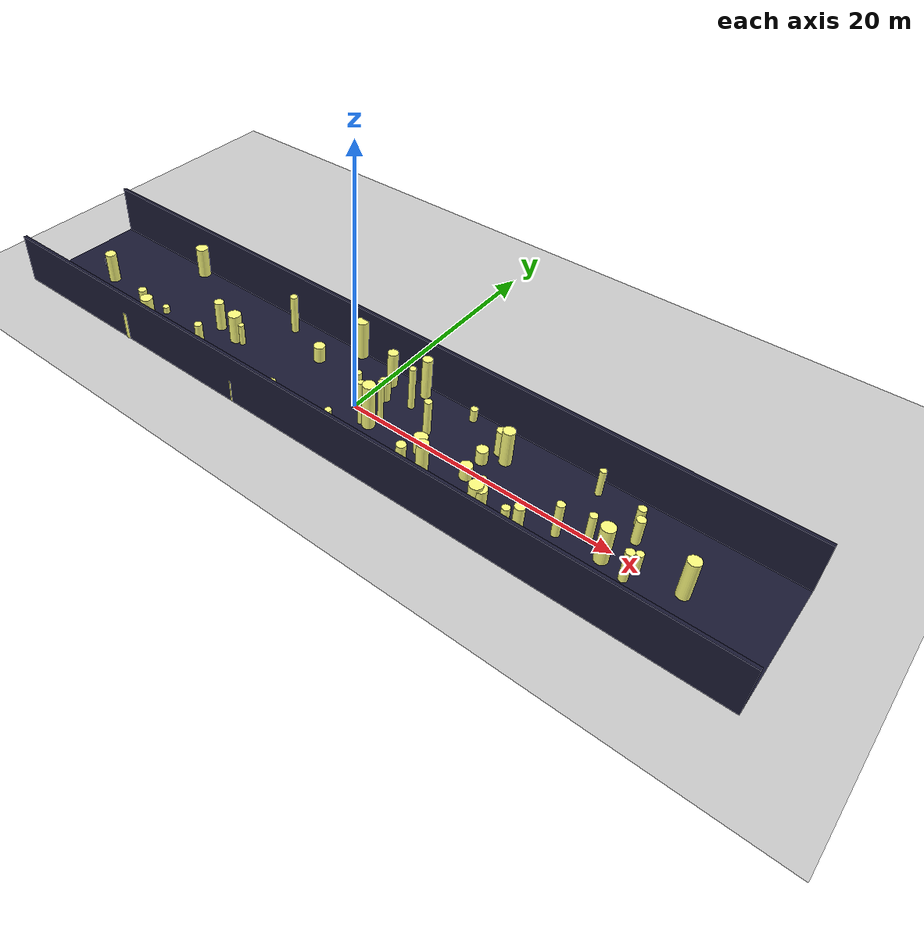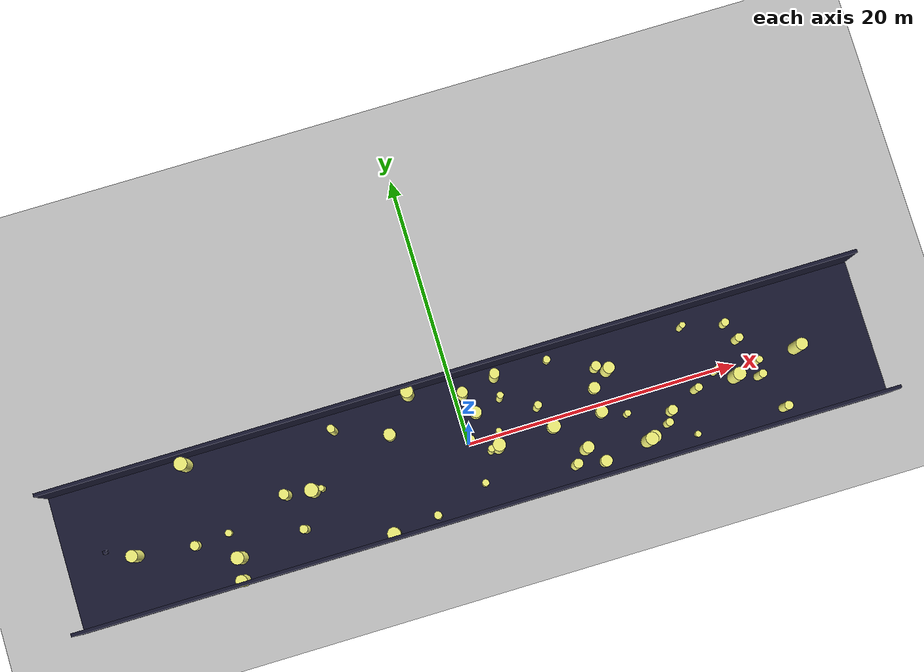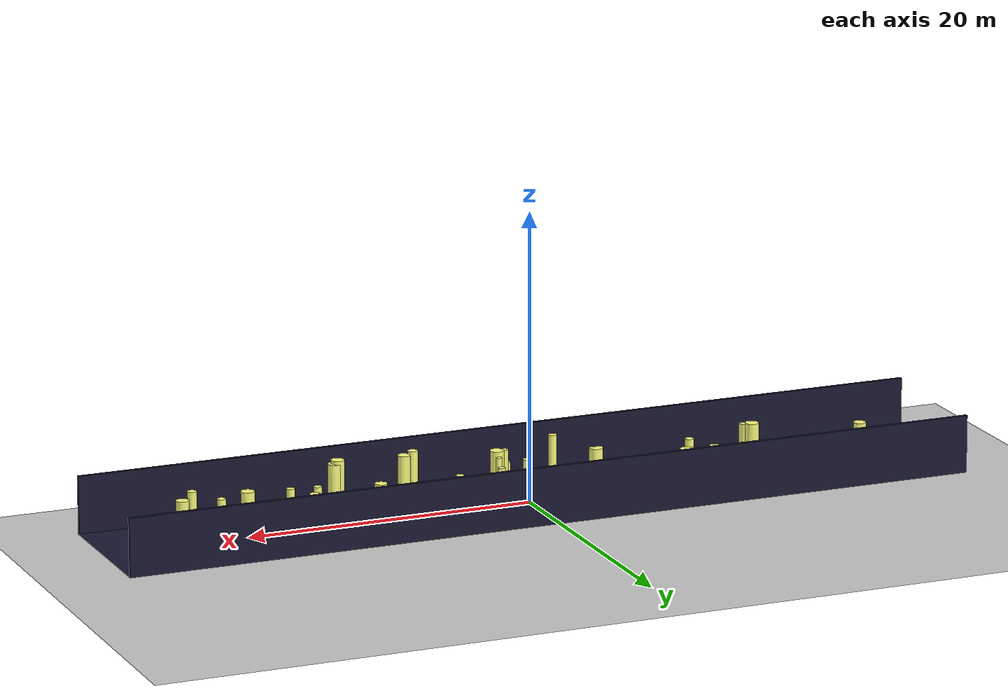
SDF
<?xml version="1.0"?>
<sdf version="1.4">
  <world name="default">
    <gui>
      <camera name="user_camera">
        <pose>-20 -30 40 0 0.66 0.83</pose>
      </camera>
    </gui>
    <include>
      <uri>model://ground_plane</uri>
    </include>
    <include>
      <uri>model://sun</uri>
    </include>
    <scene>
      <shadows>0</shadows>
    </scene>
    <model name="forest">
      <static>true</static>
      <link name="cylinder0">
        <pose>-9.007866908107854 3.6336175938605813 1.5889710431421862 0 0 0 </pose>
        <visual name="visual">
          <geometry>
            <cylinder>
              <radius>0.28667502407270284</radius>
              <length>3.1779420862843724</length>
            </cylinder>
          </geometry>
          <material>
            <ambient>0.6 0.6 0.6 1</ambient>
            <diffuse>1 1 0.5 1</diffuse>
            <specular>0 0 0</specular>
            <emissive>0 0 0 1</emissive>
          </material>
        </visual>
        <collision name="collision">
          <geometry>
            <cylinder>
              <radius>0.28667502407270284</radius>
              <length>3.1779420862843724</length>
            </cylinder>
          </geometry>
          <max_contacts>0</max_contacts>
        </collision>
      </link>
      <link name="cylinder1">
        <pose>-20.66569968192196 -1.3975017943477566 0.6072020154267208 0 0 0 </pose>
        <visual name="visual">
          <geometry>
            <cylinder>
              <radius>0.3318479653433595</radius>
              <length>1.2144040308534416</length>
            </cylinder>
          </geometry>
          <material>
            <ambient>0.6 0.6 0.6 1</ambient>
            <diffuse>1 1 0.5 1</diffuse>
            <specular>0 0 0</specular>
            <emissive>0 0 0 1</emissive>
          </material>
        </visual>
        <collision name="collision">
          <geometry>
            <cylinder>
              <radius>0.3318479653433595</radius>
              <length>1.2144040308534416</length>
            </cylinder>
          </geometry>
          <max_contacts>0</max_contacts>
        </collision>
      </link>
      <link name="cylinder2">
        <pose>21.60826984879961 -0.21720207500999233 0.743101159314246 0 0 0 </pose>
        <visual name="visual">
          <geometry>
            <cylinder>
              <radius>0.2509373916475997</radius>
              <length>1.486202318628492</length>
            </cylinder>
          </geometry>
          <material>
            <ambient>0.6 0.6 0.6 1</ambient>
            <diffuse>1 1 0.5 1</diffuse>
            <specular>0 0 0</specular>
            <emissive>0 0 0 1</emissive>
          </material>
        </visual>
        <collision name="collision">
          <geometry>
            <cylinder>
              <radius>0.2509373916475997</radius>
              <length>1.486202318628492</length>
            </cylinder>
          </geometry>
          <max_contacts>0</max_contacts>
        </collision>
      </link>
      <link name="cylinder3">
        <pose>10.23094538110945 2.631948022635946 1.05407087368085 0 0 0 </pose>
        <visual name="visual">
          <geometry>
            <cylinder>
              <radius>0.34786648786044283</radius>
              <length>2.1081417473617</length>
            </cylinder>
          </geometry>
          <material>
            <ambient>0.6 0.6 0.6 1</ambient>
            <diffuse>1 1 0.5 1</diffuse>
            <specular>0 0 0</specular>
            <emissive>0 0 0 1</emissive>
          </material>
        </visual>
        <collision name="collision">
          <geometry>
            <cylinder>
              <radius>0.34786648786044283</radius>
              <length>2.1081417473617</length>
            </cylinder>
          </geometry>
          <max_contacts>0</max_contacts>
        </collision>
      </link>
      <link name="cylinder4">
        <pose>-11.583739127271969 -0.05037728513036388 1.2016029947754325 0 0 0 </pose>
        <visual name="visual">
          <geometry>
            <cylinder>
              <radius>0.496545229920837</radius>
              <length>2.403205989550865</length>
            </cylinder>
          </geometry>
          <material>
            <ambient>0.6 0.6 0.6 1</ambient>
            <diffuse>1 1 0.5 1</diffuse>
            <specular>0 0 0</specular>
            <emissive>0 0 0 1</emissive>
          </material>
        </visual>
        <collision name="collision">
          <geometry>
            <cylinder>
              <radius>0.496545229920837</radius>
              <length>2.403205989550865</length>
            </cylinder>
          </geometry>
          <max_contacts>0</max_contacts>
        </collision>
      </link>
      <link name="cylinder5">
        <pose>-18.03128849901069 -4.751201563860398 1.1048529616489402 0 0 0 </pose>
        <visual name="visual">
          <geometry>
            <cylinder>
              <radius>0.4230949329484761</radius>
              <length>2.2097059232978804</length>
            </cylinder>
          </geometry>
          <material>
            <ambient>0.6 0.6 0.6 1</ambient>
            <diffuse>1 1 0.5 1</diffuse>
            <specular>0 0 0</specular>
            <emissive>0 0 0 1</emissive>
          </material>
        </visual>
        <collision name="collision">
          <geometry>
            <cylinder>
              <radius>0.4230949329484761</radius>
              <length>2.2097059232978804</length>
            </cylinder>
          </geometry>
          <max_contacts>0</max_contacts>
        </collision>
      </link>
      <link name="cylinder6">
        <pose>10.976531216105947 2.1993259453046266 1.4198526204947848 0 0 0 </pose>
        <visual name="visual">
          <geometry>
            <cylinder>
              <radius>0.42525398023998084</radius>
              <length>2.8397052409895696</length>
            </cylinder>
          </geometry>
          <material>
            <ambient>0.6 0.6 0.6 1</ambient>
            <diffuse>1 1 0.5 1</diffuse>
            <specular>0 0 0</specular>
            <emissive>0 0 0 1</emissive>
          </material>
        </visual>
        <collision name="collision">
          <geometry>
            <cylinder>
              <radius>0.42525398023998084</radius>
              <length>2.8397052409895696</length>
            </cylinder>
          </geometry>
          <max_contacts>0</max_contacts>
        </collision>
      </link>
      <link name="cylinder7">
        <pose>22.43195071832072 -3.9768542778651748 1.1827580891793548 0 0 0 </pose>
        <visual name="visual">
          <geometry>
            <cylinder>
              <radius>0.3150210592932545</radius>
              <length>2.3655161783587095</length>
            </cylinder>
          </geometry>
          <material>
            <ambient>0.6 0.6 0.6 1</ambient>
            <diffuse>1 1 0.5 1</diffuse>
            <specular>0 0 0</specular>
            <emissive>0 0 0 1</emissive>
          </material>
        </visual>
        <collision name="collision">
          <geometry>
            <cylinder>
              <radius>0.3150210592932545</radius>
              <length>2.3655161783587095</length>
            </cylinder>
          </geometry>
          <max_contacts>0</max_contacts>
        </collision>
      </link>
      <link name="cylinder8">
        <pose>20.07810128007857 3.0350034423251415 0.7243621867205627 0 0 0 </pose>
        <visual name="visual">
          <geometry>
            <cylinder>
              <radius>0.28852078708174766</radius>
              <length>1.4487243734411255</length>
            </cylinder>
          </geometry>
          <material>
            <ambient>0.6 0.6 0.6 1</ambient>
            <diffuse>1 1 0.5 1</diffuse>
            <specular>0 0 0</specular>
            <emissive>0 0 0 1</emissive>
          </material>
        </visual>
        <collision name="collision">
          <geometry>
            <cylinder>
              <radius>0.28852078708174766</radius>
              <length>1.4487243734411255</length>
            </cylinder>
          </geometry>
          <max_contacts>0</max_contacts>
        </collision>
      </link>
      <link name="cylinder9">
        <pose>7.084890975363429 4.1733206335773545 0.5275627496887653 0 0 0 </pose>
        <visual name="visual">
          <geometry>
            <cylinder>
              <radius>0.26593459914726936</radius>
              <length>1.0551254993775305</length>
            </cylinder>
          </geometry>
          <material>
            <ambient>0.6 0.6 0.6 1</ambient>
            <diffuse>1 1 0.5 1</diffuse>
            <specular>0 0 0</specular>
            <emissive>0 0 0 1</emissive>
          </material>
        </visual>
        <collision name="collision">
          <geometry>
            <cylinder>
              <radius>0.26593459914726936</radius>
              <length>1.0551254993775305</length>
            </cylinder>
          </geometry>
          <max_contacts>0</max_contacts>
        </collision>
      </link>
      <link name="cylinder10">
        <pose>14.067921233545064 -2.6960658570881 1.0225722839494082 0 0 0 </pose>
        <visual name="visual">
          <geometry>
            <cylinder>
              <radius>0.27816849083908235</radius>
              <length>2.0451445678988165</length>
            </cylinder>
          </geometry>
          <material>
            <ambient>0.6 0.6 0.6 1</ambient>
            <diffuse>1 1 0.5 1</diffuse>
            <specular>0 0 0</specular>
            <emissive>0 0 0 1</emissive>
          </material>
        </visual>
        <collision name="collision">
          <geometry>
            <cylinder>
              <radius>0.27816849083908235</radius>
              <length>2.0451445678988165</length>
            </cylinder>
          </geometry>
          <max_contacts>0</max_contacts>
        </collision>
      </link>
      <link name="cylinder11">
        <pose>1.1215339120990926 1.9502659571878533 0.8541980133889238 0 0 0 </pose>
        <visual name="visual">
          <geometry>
            <cylinder>
              <radius>0.4098261735864035</radius>
              <length>1.7083960267778475</length>
            </cylinder>
          </geometry>
          <material>
            <ambient>0.6 0.6 0.6 1</ambient>
            <diffuse>1 1 0.5 1</diffuse>
            <specular>0 0 0</specular>
            <emissive>0 0 0 1</emissive>
          </material>
        </visual>
        <collision name="collision">
          <geometry>
            <cylinder>
              <radius>0.4098261735864035</radius>
              <length>1.7083960267778475</length>
            </cylinder>
          </geometry>
          <max_contacts>0</max_contacts>
        </collision>
      </link>
      <link name="cylinder12">
        <pose>11.455414160498293 -1.2038409326856545 0.7909466233645084 0 0 0 </pose>
        <visual name="visual">
          <geometry>
            <cylinder>
              <radius>0.22921347853809856</radius>
              <length>1.5818932467290168</length>
            </cylinder>
          </geometry>
          <material>
            <ambient>0.6 0.6 0.6 1</ambient>
            <diffuse>1 1 0.5 1</diffuse>
            <specular>0 0 0</specular>
            <emissive>0 0 0 1</emissive>
          </material>
        </visual>
        <collision name="collision">
          <geometry>
            <cylinder>
              <radius>0.22921347853809856</radius>
              <length>1.5818932467290168</length>
            </cylinder>
          </geometry>
          <max_contacts>0</max_contacts>
        </collision>
      </link>
      <link name="cylinder13">
        <pose>0.5568818070063166 3.4864768307656817 1.4662130956916957 0 0 0 </pose>
        <visual name="visual">
          <geometry>
            <cylinder>
              <radius>0.38497242811029386</radius>
              <length>2.9324261913833913</length>
            </cylinder>
          </geometry>
          <material>
            <ambient>0.6 0.6 0.6 1</ambient>
            <diffuse>1 1 0.5 1</diffuse>
            <specular>0 0 0</specular>
            <emissive>0 0 0 1</emissive>
          </material>
        </visual>
        <collision name="collision">
          <geometry>
            <cylinder>
              <radius>0.38497242811029386</radius>
              <length>2.9324261913833913</length>
            </cylinder>
          </geometry>
          <max_contacts>0</max_contacts>
        </collision>
      </link>
      <link name="cylinder14">
        <pose>2.230680418383379 0.09998492530160252 1.7162210548823205 0 0 0 </pose>
        <visual name="visual">
          <geometry>
            <cylinder>
              <radius>0.20535226864262868</radius>
              <length>3.432442109764641</length>
            </cylinder>
          </geometry>
          <material>
            <ambient>0.6 0.6 0.6 1</ambient>
            <diffuse>1 1 0.5 1</diffuse>
            <specular>0 0 0</specular>
            <emissive>0 0 0 1</emissive>
          </material>
        </visual>
        <collision name="collision">
          <geometry>
            <cylinder>
              <radius>0.20535226864262868</radius>
              <length>3.432442109764641</length>
            </cylinder>
          </geometry>
          <max_contacts>0</max_contacts>
        </collision>
      </link>
      <link name="cylinder15">
        <pose>-12.847125937846066 -2.519485884373257 1.14805936063665 0 0 0 </pose>
        <visual name="visual">
          <geometry>
            <cylinder>
              <radius>0.3015717111274162</radius>
              <length>2.2961187212733</length>
            </cylinder>
          </geometry>
          <material>
            <ambient>0.6 0.6 0.6 1</ambient>
            <diffuse>1 1 0.5 1</diffuse>
            <specular>0 0 0</specular>
            <emissive>0 0 0 1</emissive>
          </material>
        </visual>
        <collision name="collision">
          <geometry>
            <cylinder>
              <radius>0.3015717111274162</radius>
              <length>2.2961187212733</length>
            </cylinder>
          </geometry>
          <max_contacts>0</max_contacts>
        </collision>
      </link>
      <link name="cylinder16">
        <pose>6.894871845508948 -3.673462699161311 1.7139166994179338 0 0 0 </pose>
        <visual name="visual">
          <geometry>
            <cylinder>
              <radius>0.34057368980221514</radius>
              <length>3.4278333988358676</length>
            </cylinder>
          </geometry>
          <material>
            <ambient>0.6 0.6 0.6 1</ambient>
            <diffuse>1 1 0.5 1</diffuse>
            <specular>0 0 0</specular>
            <emissive>0 0 0 1</emissive>
          </material>
        </visual>
        <collision name="collision">
          <geometry>
            <cylinder>
              <radius>0.34057368980221514</radius>
              <length>3.4278333988358676</length>
            </cylinder>
          </geometry>
          <max_contacts>0</max_contacts>
        </collision>
      </link>
      <link name="cylinder17">
        <pose>-5.232918138662711 2.217915640534054 0.6766827569482855 0 0 0 </pose>
        <visual name="visual">
          <geometry>
            <cylinder>
              <radius>0.4347576830216131</radius>
              <length>1.353365513896571</length>
            </cylinder>
          </geometry>
          <material>
            <ambient>0.6 0.6 0.6 1</ambient>
            <diffuse>1 1 0.5 1</diffuse>
            <specular>0 0 0</specular>
            <emissive>0 0 0 1</emissive>
          </material>
        </visual>
        <collision name="collision">
          <geometry>
            <cylinder>
              <radius>0.4347576830216131</radius>
              <length>1.353365513896571</length>
            </cylinder>
          </geometry>
          <max_contacts>0</max_contacts>
        </collision>
      </link>
      <link name="cylinder18">
        <pose>7.892549320495114 -2.7889331821351138 1.7382154129832954 0 0 0 </pose>
        <visual name="visual">
          <geometry>
            <cylinder>
              <radius>0.42028563548981224</radius>
              <length>3.476430825966591</length>
            </cylinder>
          </geometry>
          <material>
            <ambient>0.6 0.6 0.6 1</ambient>
            <diffuse>1 1 0.5 1</diffuse>
            <specular>0 0 0</specular>
            <emissive>0 0 0 1</emissive>
          </material>
        </visual>
        <collision name="collision">
          <geometry>
            <cylinder>
              <radius>0.42028563548981224</radius>
              <length>3.476430825966591</length>
            </cylinder>
          </geometry>
          <max_contacts>0</max_contacts>
        </collision>
      </link>
      <link name="cylinder19">
        <pose>-17.81199330406408 -3.1402342071944656 1.339968113275627 0 0 0 </pose>
        <visual name="visual">
          <geometry>
            <cylinder>
              <radius>0.47244870960032315</radius>
              <length>2.679936226551254</length>
            </cylinder>
          </geometry>
          <material>
            <ambient>0.6 0.6 0.6 1</ambient>
            <diffuse>1 1 0.5 1</diffuse>
            <specular>0 0 0</specular>
            <emissive>0 0 0 1</emissive>
          </material>
        </visual>
        <collision name="collision">
          <geometry>
            <cylinder>
              <radius>0.47244870960032315</radius>
              <length>2.679936226551254</length>
            </cylinder>
          </geometry>
          <max_contacts>0</max_contacts>
        </collision>
      </link>
      <link name="cylinder20">
        <pose>3.0935207519451886 4.061352386269679 1.668523421639661 0 0 0 </pose>
        <visual name="visual">
          <geometry>
            <cylinder>
              <radius>0.3658156530632871</radius>
              <length>3.337046843279322</length>
            </cylinder>
          </geometry>
          <material>
            <ambient>0.6 0.6 0.6 1</ambient>
            <diffuse>1 1 0.5 1</diffuse>
            <specular>0 0 0</specular>
            <emissive>0 0 0 1</emissive>
          </material>
        </visual>
        <collision name="collision">
          <geometry>
            <cylinder>
              <radius>0.3658156530632871</radius>
              <length>3.337046843279322</length>
            </cylinder>
          </geometry>
          <max_contacts>0</max_contacts>
        </collision>
      </link>
      <link name="cylinder21">
        <pose>20.58912453833682 1.668214683291814 1.0158383648025242 0 0 0 </pose>
        <visual name="visual">
          <geometry>
            <cylinder>
              <radius>0.30657632718827377</radius>
              <length>2.0316767296050484</length>
            </cylinder>
          </geometry>
          <material>
            <ambient>0.6 0.6 0.6 1</ambient>
            <diffuse>1 1 0.5 1</diffuse>
            <specular>0 0 0</specular>
            <emissive>0 0 0 1</emissive>
          </material>
        </visual>
        <collision name="collision">
          <geometry>
            <cylinder>
              <radius>0.30657632718827377</radius>
              <length>2.0316767296050484</length>
            </cylinder>
          </geometry>
          <max_contacts>0</max_contacts>
        </collision>
      </link>
      <link name="cylinder22">
        <pose>-18.198656478588447 -1.194930509030022 0.31977754416929016 0 0 0 </pose>
        <visual name="visual">
          <geometry>
            <cylinder>
              <radius>0.25087194757401515</radius>
              <length>0.6395550883385803</length>
            </cylinder>
          </geometry>
          <material>
            <ambient>0.6 0.6 0.6 1</ambient>
            <diffuse>1 1 0.5 1</diffuse>
            <specular>0 0 0</specular>
            <emissive>0 0 0 1</emissive>
          </material>
        </visual>
        <collision name="collision">
          <geometry>
            <cylinder>
              <radius>0.25087194757401515</radius>
              <length>0.6395550883385803</length>
            </cylinder>
          </geometry>
          <max_contacts>0</max_contacts>
        </collision>
      </link>
      <link name="cylinder23">
        <pose>9.78204504774218 -0.5427238083772732 0.5450917128117679 0 0 0 </pose>
        <visual name="visual">
          <geometry>
            <cylinder>
              <radius>0.4395216025738587</radius>
              <length>1.0901834256235359</length>
            </cylinder>
          </geometry>
          <material>
            <ambient>0.6 0.6 0.6 1</ambient>
            <diffuse>1 1 0.5 1</diffuse>
            <specular>0 0 0</specular>
            <emissive>0 0 0 1</emissive>
          </material>
        </visual>
        <collision name="collision">
          <geometry>
            <cylinder>
              <radius>0.4395216025738587</radius>
              <length>1.0901834256235359</length>
            </cylinder>
          </geometry>
          <max_contacts>0</max_contacts>
        </collision>
      </link>
      <link name="cylinder24">
        <pose>14.564159347355684 -1.9086770851444532 0.9110281073410784 0 0 0 </pose>
        <visual name="visual">
          <geometry>
            <cylinder>
              <radius>0.35575939944313006</radius>
              <length>1.8220562146821568</length>
            </cylinder>
          </geometry>
          <material>
            <ambient>0.6 0.6 0.6 1</ambient>
            <diffuse>1 1 0.5 1</diffuse>
            <specular>0 0 0</specular>
            <emissive>0 0 0 1</emissive>
          </material>
        </visual>
        <collision name="collision">
          <geometry>
            <cylinder>
              <radius>0.35575939944313006</radius>
              <length>1.8220562146821568</length>
            </cylinder>
          </geometry>
          <max_contacts>0</max_contacts>
        </collision>
      </link>
      <link name="cylinder25">
        <pose>3.0410738579145224 2.4734827685278944 1.7418060419678703 0 0 0 </pose>
        <visual name="visual">
          <geometry>
            <cylinder>
              <radius>0.24036115937617558</radius>
              <length>3.4836120839357405</length>
            </cylinder>
          </geometry>
          <material>
            <ambient>0.6 0.6 0.6 1</ambient>
            <diffuse>1 1 0.5 1</diffuse>
            <specular>0 0 0</specular>
            <emissive>0 0 0 1</emissive>
          </material>
        </visual>
        <collision name="collision">
          <geometry>
            <cylinder>
              <radius>0.24036115937617558</radius>
              <length>3.4836120839357405</length>
            </cylinder>
          </geometry>
          <max_contacts>0</max_contacts>
        </collision>
      </link>
      <link name="cylinder26">
        <pose>-10.920263570265732 -0.08453798083266939 0.8777746233620404 0 0 0 </pose>
        <visual name="visual">
          <geometry>
            <cylinder>
              <radius>0.21915569812939673</radius>
              <length>1.7555492467240807</length>
            </cylinder>
          </geometry>
          <material>
            <ambient>0.6 0.6 0.6 1</ambient>
            <diffuse>1 1 0.5 1</diffuse>
            <specular>0 0 0</specular>
            <emissive>0 0 0 1</emissive>
          </material>
        </visual>
        <collision name="collision">
          <geometry>
            <cylinder>
              <radius>0.21915569812939673</radius>
              <length>1.7555492467240807</length>
            </cylinder>
          </geometry>
          <max_contacts>0</max_contacts>
        </collision>
      </link>
      <link name="cylinder27">
        <pose>-13.505184015954352 0.20723786523372123 1.2383711811841984 0 0 0 </pose>
        <visual name="visual">
          <geometry>
            <cylinder>
              <radius>0.36829425942604094</radius>
              <length>2.476742362368397</length>
            </cylinder>
          </geometry>
          <material>
            <ambient>0.6 0.6 0.6 1</ambient>
            <diffuse>1 1 0.5 1</diffuse>
            <specular>0 0 0</specular>
            <emissive>0 0 0 1</emissive>
          </material>
        </visual>
        <collision name="collision">
          <geometry>
            <cylinder>
              <radius>0.36829425942604094</radius>
              <length>2.476742362368397</length>
            </cylinder>
          </geometry>
          <max_contacts>0</max_contacts>
        </collision>
      </link>
      <link name="cylinder28">
        <pose>15.963320988458662 -4.02899247172079 0.3038410436765483 0 0 0 </pose>
        <visual name="visual">
          <geometry>
            <cylinder>
              <radius>0.2208619982351021</radius>
              <length>0.6076820873530966</length>
            </cylinder>
          </geometry>
          <material>
            <ambient>0.6 0.6 0.6 1</ambient>
            <diffuse>1 1 0.5 1</diffuse>
            <specular>0 0 0</specular>
            <emissive>0 0 0 1</emissive>
          </material>
        </visual>
        <collision name="collision">
          <geometry>
            <cylinder>
              <radius>0.2208619982351021</radius>
              <length>0.6076820873530966</length>
            </cylinder>
          </geometry>
          <max_contacts>0</max_contacts>
        </collision>
      </link>
      <link name="cylinder29">
        <pose>1.3882422629676832 -0.9530744861344331 1.8016392850076512 0 0 0 </pose>
        <visual name="visual">
          <geometry>
            <cylinder>
              <radius>0.24140551050738118</radius>
              <length>3.6032785700153025</length>
            </cylinder>
          </geometry>
          <material>
            <ambient>0.6 0.6 0.6 1</ambient>
            <diffuse>1 1 0.5 1</diffuse>
            <specular>0 0 0</specular>
            <emissive>0 0 0 1</emissive>
          </material>
        </visual>
        <collision name="collision">
          <geometry>
            <cylinder>
              <radius>0.24140551050738118</radius>
              <length>3.6032785700153025</length>
            </cylinder>
          </geometry>
          <max_contacts>0</max_contacts>
        </collision>
      </link>
      <link name="cylinder30">
        <pose>24.485439399219963 -0.10823779684790757 1.535018260718819 0 0 0 </pose>
        <visual name="visual">
          <geometry>
            <cylinder>
              <radius>0.43444988958533387</radius>
              <length>3.070036521437638</length>
            </cylinder>
          </geometry>
          <material>
            <ambient>0.6 0.6 0.6 1</ambient>
            <diffuse>1 1 0.5 1</diffuse>
            <specular>0 0 0</specular>
            <emissive>0 0 0 1</emissive>
          </material>
        </visual>
        <collision name="collision">
          <geometry>
            <cylinder>
              <radius>0.43444988958533387</radius>
              <length>3.070036521437638</length>
            </cylinder>
          </geometry>
          <max_contacts>0</max_contacts>
        </collision>
      </link>
      <link name="cylinder31">
        <pose>18.390762677423737 -0.07448069141323721 1.139262341634041 0 0 0 </pose>
        <visual name="visual">
          <geometry>
            <cylinder>
              <radius>0.26415068462392577</radius>
              <length>2.278524683268082</length>
            </cylinder>
          </geometry>
          <material>
            <ambient>0.6 0.6 0.6 1</ambient>
            <diffuse>1 1 0.5 1</diffuse>
            <specular>0 0 0</specular>
            <emissive>0 0 0 1</emissive>
          </material>
        </visual>
        <collision name="collision">
          <geometry>
            <cylinder>
              <radius>0.26415068462392577</radius>
              <length>2.278524683268082</length>
            </cylinder>
          </geometry>
          <max_contacts>0</max_contacts>
        </collision>
      </link>
      <link name="cylinder32">
        <pose>5.422920279433285 1.0915185856771137 1.4315191015747202 0 0 0 </pose>
        <visual name="visual">
          <geometry>
            <cylinder>
              <radius>0.2757282603464019</radius>
              <length>2.8630382031494404</length>
            </cylinder>
          </geometry>
          <material>
            <ambient>0.6 0.6 0.6 1</ambient>
            <diffuse>1 1 0.5 1</diffuse>
            <specular>0 0 0</specular>
            <emissive>0 0 0 1</emissive>
          </material>
        </visual>
        <collision name="collision">
          <geometry>
            <cylinder>
              <radius>0.2757282603464019</radius>
              <length>2.8630382031494404</length>
            </cylinder>
          </geometry>
          <max_contacts>0</max_contacts>
        </collision>
      </link>
      <link name="cylinder33">
        <pose>12.609805922683584 -3.3974157979691366 1.628997460718642 0 0 0 </pose>
        <visual name="visual">
          <geometry>
            <cylinder>
              <radius>0.4527433334993503</radius>
              <length>3.257994921437284</length>
            </cylinder>
          </geometry>
          <material>
            <ambient>0.6 0.6 0.6 1</ambient>
            <diffuse>1 1 0.5 1</diffuse>
            <specular>0 0 0</specular>
            <emissive>0 0 0 1</emissive>
          </material>
        </visual>
        <collision name="collision">
          <geometry>
            <cylinder>
              <radius>0.4527433334993503</radius>
              <length>3.257994921437284</length>
            </cylinder>
          </geometry>
          <max_contacts>0</max_contacts>
        </collision>
      </link>
      <link name="cylinder34">
        <pose>19.684812798289393 -0.8630039857137985 1.4560145076485358 0 0 0 </pose>
        <visual name="visual">
          <geometry>
            <cylinder>
              <radius>0.46643593011546214</radius>
              <length>2.9120290152970716</length>
            </cylinder>
          </geometry>
          <material>
            <ambient>0.6 0.6 0.6 1</ambient>
            <diffuse>1 1 0.5 1</diffuse>
            <specular>0 0 0</specular>
            <emissive>0 0 0 1</emissive>
          </material>
        </visual>
        <collision name="collision">
          <geometry>
            <cylinder>
              <radius>0.46643593011546214</radius>
              <length>2.9120290152970716</length>
            </cylinder>
          </geometry>
          <max_contacts>0</max_contacts>
        </collision>
      </link>
      <link name="cylinder35">
        <pose>0.3403180823721499 -3.065173839341063 1.0136349316563986 0 0 0 </pose>
        <visual name="visual">
          <geometry>
            <cylinder>
              <radius>0.24735041829598245</radius>
              <length>2.0272698633127972</length>
            </cylinder>
          </geometry>
          <material>
            <ambient>0.6 0.6 0.6 1</ambient>
            <diffuse>1 1 0.5 1</diffuse>
            <specular>0 0 0</specular>
            <emissive>0 0 0 1</emissive>
          </material>
        </visual>
        <collision name="collision">
          <geometry>
            <cylinder>
              <radius>0.24735041829598245</radius>
              <length>2.0272698633127972</length>
            </cylinder>
          </geometry>
          <max_contacts>0</max_contacts>
        </collision>
      </link>
      <link name="cylinder36">
        <pose>6.170860681406232 -0.5781295806773459 0.6849924757193119 0 0 0 </pose>
        <visual name="visual">
          <geometry>
            <cylinder>
              <radius>0.47993328662951956</radius>
              <length>1.3699849514386238</length>
            </cylinder>
          </geometry>
          <material>
            <ambient>0.6 0.6 0.6 1</ambient>
            <diffuse>1 1 0.5 1</diffuse>
            <specular>0 0 0</specular>
            <emissive>0 0 0 1</emissive>
          </material>
        </visual>
        <collision name="collision">
          <geometry>
            <cylinder>
              <radius>0.47993328662951956</radius>
              <length>1.3699849514386238</length>
            </cylinder>
          </geometry>
          <max_contacts>0</max_contacts>
        </collision>
      </link>
      <link name="cylinder37">
        <pose>16.96972471661556 3.6620646601039795 1.0553318849215472 0 0 0 </pose>
        <visual name="visual">
          <geometry>
            <cylinder>
              <radius>0.2202196635114007</radius>
              <length>2.1106637698430943</length>
            </cylinder>
          </geometry>
          <material>
            <ambient>0.6 0.6 0.6 1</ambient>
            <diffuse>1 1 0.5 1</diffuse>
            <specular>0 0 0</specular>
            <emissive>0 0 0 1</emissive>
          </material>
        </visual>
        <collision name="collision">
          <geometry>
            <cylinder>
              <radius>0.2202196635114007</radius>
              <length>2.1106637698430943</length>
            </cylinder>
          </geometry>
          <max_contacts>0</max_contacts>
        </collision>
      </link>
      <link name="cylinder38">
        <pose>12.339412434378886 -3.4931097686628423 1.735926677042674 0 0 0 </pose>
        <visual name="visual">
          <geometry>
            <cylinder>
              <radius>0.45570570008438444</radius>
              <length>3.471853354085348</length>
            </cylinder>
          </geometry>
          <material>
            <ambient>0.6 0.6 0.6 1</ambient>
            <diffuse>1 1 0.5 1</diffuse>
            <specular>0 0 0</specular>
            <emissive>0 0 0 1</emissive>
          </material>
        </visual>
        <collision name="collision">
          <geometry>
            <cylinder>
              <radius>0.45570570008438444</radius>
              <length>3.471853354085348</length>
            </cylinder>
          </geometry>
          <max_contacts>0</max_contacts>
        </collision>
      </link>
      <link name="cylinder39">
        <pose>-19.861470805851027 4.343687006448519 1.2912237405015508 0 0 0 </pose>
        <visual name="visual">
          <geometry>
            <cylinder>
              <radius>0.4881777541387877</radius>
              <length>2.5824474810031015</length>
            </cylinder>
          </geometry>
          <material>
            <ambient>0.6 0.6 0.6 1</ambient>
            <diffuse>1 1 0.5 1</diffuse>
            <specular>0 0 0</specular>
            <emissive>0 0 0 1</emissive>
          </material>
        </visual>
        <collision name="collision">
          <geometry>
            <cylinder>
              <radius>0.4881777541387877</radius>
              <length>2.5824474810031015</length>
            </cylinder>
          </geometry>
          <max_contacts>0</max_contacts>
        </collision>
      </link>
      <link name="cylinder40">
        <pose>-6.888003246806019 -4.653774237754097 0.8830182609436348 0 0 0 </pose>
        <visual name="visual">
          <geometry>
            <cylinder>
              <radius>0.4811620832128607</radius>
              <length>1.7660365218872696</length>
            </cylinder>
          </geometry>
          <material>
            <ambient>0.6 0.6 0.6 1</ambient>
            <diffuse>1 1 0.5 1</diffuse>
            <specular>0 0 0</specular>
            <emissive>0 0 0 1</emissive>
          </material>
        </visual>
        <collision name="collision">
          <geometry>
            <cylinder>
              <radius>0.4811620832128607</radius>
              <length>1.7660365218872696</length>
            </cylinder>
          </geometry>
          <max_contacts>0</max_contacts>
        </collision>
      </link>
      <link name="cylinder41">
        <pose>-24.878288443230655 -0.9012888842434785 1.2584974794521582 0 0 0 </pose>
        <visual name="visual">
          <geometry>
            <cylinder>
              <radius>0.43380211548348035</radius>
              <length>2.5169949589043163</length>
            </cylinder>
          </geometry>
          <material>
            <ambient>0.6 0.6 0.6 1</ambient>
            <diffuse>1 1 0.5 1</diffuse>
            <specular>0 0 0</specular>
            <emissive>0 0 0 1</emissive>
          </material>
        </visual>
        <collision name="collision">
          <geometry>
            <cylinder>
              <radius>0.43380211548348035</radius>
              <length>2.5169949589043163</length>
            </cylinder>
          </geometry>
          <max_contacts>0</max_contacts>
        </collision>
      </link>
      <link name="cylinder42">
        <pose>9.763498100307785 1.2472093331212388 0.5798372040383625 0 0 0 </pose>
        <visual name="visual">
          <geometry>
            <cylinder>
              <radius>0.41798552708555325</radius>
              <length>1.159674408076725</length>
            </cylinder>
          </geometry>
          <material>
            <ambient>0.6 0.6 0.6 1</ambient>
            <diffuse>1 1 0.5 1</diffuse>
            <specular>0 0 0</specular>
            <emissive>0 0 0 1</emissive>
          </material>
        </visual>
        <collision name="collision">
          <geometry>
            <cylinder>
              <radius>0.41798552708555325</radius>
              <length>1.159674408076725</length>
            </cylinder>
          </geometry>
          <max_contacts>0</max_contacts>
        </collision>
      </link>
      <link name="cylinder43">
        <pose>-3.5305142669015197 -4.315103547448052 1.5855765989218111 0 0 0 </pose>
        <visual name="visual">
          <geometry>
            <cylinder>
              <radius>0.28096165243456356</radius>
              <length>3.1711531978436223</length>
            </cylinder>
          </geometry>
          <material>
            <ambient>0.6 0.6 0.6 1</ambient>
            <diffuse>1 1 0.5 1</diffuse>
            <specular>0 0 0</specular>
            <emissive>0 0 0 1</emissive>
          </material>
        </visual>
        <collision name="collision">
          <geometry>
            <cylinder>
              <radius>0.28096165243456356</radius>
              <length>3.1711531978436223</length>
            </cylinder>
          </geometry>
          <max_contacts>0</max_contacts>
        </collision>
      </link>
      <link name="cylinder44">
        <pose>21.354849085987816 -1.3071632757909182 1.2347816285162416 0 0 0 </pose>
        <visual name="visual">
          <geometry>
            <cylinder>
              <radius>0.29064083830924725</radius>
              <length>2.4695632570324832</length>
            </cylinder>
          </geometry>
          <material>
            <ambient>0.6 0.6 0.6 1</ambient>
            <diffuse>1 1 0.5 1</diffuse>
            <specular>0 0 0</specular>
            <emissive>0 0 0 1</emissive>
          </material>
        </visual>
        <collision name="collision">
          <geometry>
            <cylinder>
              <radius>0.29064083830924725</radius>
              <length>2.4695632570324832</length>
            </cylinder>
          </geometry>
          <max_contacts>0</max_contacts>
        </collision>
      </link>
      <link name="cylinder45">
        <pose>-3.1810785352559705 4.635125112088396 1.5915926409175325 0 0 0 </pose>
        <visual name="visual">
          <geometry>
            <cylinder>
              <radius>0.4607572623913494</radius>
              <length>3.183185281835065</length>
            </cylinder>
          </geometry>
          <material>
            <ambient>0.6 0.6 0.6 1</ambient>
            <diffuse>1 1 0.5 1</diffuse>
            <specular>0 0 0</specular>
            <emissive>0 0 0 1</emissive>
          </material>
        </visual>
        <collision name="collision">
          <geometry>
            <cylinder>
              <radius>0.4607572623913494</radius>
              <length>3.183185281835065</length>
            </cylinder>
          </geometry>
          <max_contacts>0</max_contacts>
        </collision>
      </link>
      <link name="cylinder46">
        <pose>1.977640957250987 -0.8527680006459466 1.8220929314163516 0 0 0 </pose>
        <visual name="visual">
          <geometry>
            <cylinder>
              <radius>0.4631032043715789</radius>
              <length>3.6441858628327033</length>
            </cylinder>
          </geometry>
          <material>
            <ambient>0.6 0.6 0.6 1</ambient>
            <diffuse>1 1 0.5 1</diffuse>
            <specular>0 0 0</specular>
            <emissive>0 0 0 1</emissive>
          </material>
        </visual>
        <collision name="collision">
          <geometry>
            <cylinder>
              <radius>0.4631032043715789</radius>
              <length>3.6441858628327033</length>
            </cylinder>
          </geometry>
          <max_contacts>0</max_contacts>
        </collision>
      </link>
      <link name="cylinder47">
        <pose>16.646089802305333 -0.94210517863117 1.3564385072571916 0 0 0 </pose>
        <visual name="visual">
          <geometry>
            <cylinder>
              <radius>0.2777712955247068</radius>
              <length>2.7128770145143832</length>
            </cylinder>
          </geometry>
          <material>
            <ambient>0.6 0.6 0.6 1</ambient>
            <diffuse>1 1 0.5 1</diffuse>
            <specular>0 0 0</specular>
            <emissive>0 0 0 1</emissive>
          </material>
        </visual>
        <collision name="collision">
          <geometry>
            <cylinder>
              <radius>0.2777712955247068</radius>
              <length>2.7128770145143832</length>
            </cylinder>
          </geometry>
          <max_contacts>0</max_contacts>
        </collision>
      </link>
      <link name="cylinder48">
        <pose>0.17420479755866936 0.11145554549315229 1.5513298861507832 0 0 0 </pose>
        <visual name="visual">
          <geometry>
            <cylinder>
              <radius>0.2978956856995734</radius>
              <length>3.1026597723015663</length>
            </cylinder>
          </geometry>
          <material>
            <ambient>0.6 0.6 0.6 1</ambient>
            <diffuse>1 1 0.5 1</diffuse>
            <specular>0 0 0</specular>
            <emissive>0 0 0 1</emissive>
          </material>
        </visual>
        <collision name="collision">
          <geometry>
            <cylinder>
              <radius>0.2978956856995734</radius>
              <length>3.1026597723015663</length>
            </cylinder>
          </geometry>
          <max_contacts>0</max_contacts>
        </collision>
      </link>
      <link name="cylinder49">
        <pose>9.042750087336856 -4.004353524564914 0.6543691178706859 0 0 0 </pose>
        <visual name="visual">
          <geometry>
            <cylinder>
              <radius>0.42303452537740394</radius>
              <length>1.3087382357413717</length>
            </cylinder>
          </geometry>
          <material>
            <ambient>0.6 0.6 0.6 1</ambient>
            <diffuse>1 1 0.5 1</diffuse>
            <specular>0 0 0</specular>
            <emissive>0 0 0 1</emissive>
          </material>
        </visual>
        <collision name="collision">
          <geometry>
            <cylinder>
              <radius>0.42303452537740394</radius>
              <length>1.3087382357413717</length>
            </cylinder>
          </geometry>
          <max_contacts>0</max_contacts>
        </collision>
      </link>
      <link name="cube0">
        <pose>0 5.0 2.0 0 0 0 </pose>
        <visual name="visual">
          <geometry>
            <box>
              <size>60.0 0.25 4.0</size>
            </box>
          </geometry>
          <material>
            <ambient>0.1 0.1 0.1 1</ambient>
            <diffuse>0.1 0.1 0.2 1</diffuse>
            <specular>0 0 0</specular>
            <emissive>0 0 0 1</emissive>
          </material>
        </visual>
        <collision name="collision">
          <geometry>
            <box>
              <size>60.0 0.25 4.0</size>
            </box>
          </geometry>
          <max_contacts>0</max_contacts>
        </collision>
      </link>
      <link name="cube1">
        <pose>0 -5.0 2.0 0 0 0 </pose>
        <visual name="visual">
          <geometry>
            <box>
              <size>60.0 0.25 4.0</size>
            </box>
          </geometry>
          <material>
            <ambient>0.1 0.1 0.1 1</ambient>
            <diffuse>0.1 0.1 0.2 1</diffuse>
            <specular>0 0 0</specular>
            <emissive>0 0 0 1</emissive>
          </material>
        </visual>
        <collision name="collision">
          <geometry>
            <box>
              <size>60.0 0.25 4.0</size>
            </box>
          </geometry>
          <max_contacts>0</max_contacts>
        </collision>
      </link>
      <link name="cube2">
        <pose>0 0 0.03125 0 0 0 </pose>
        <visual name="visual">
          <geometry>
            <box>
              <size>60.0 10 0.0625</size>
            </box>
          </geometry>
          <material>
            <ambient>0.1 0.1 0.1 1</ambient>
            <diffuse>0.1 0.1 0.2 1</diffuse>
            <specular>0 0 0</specular>
            <emissive>0 0 0 1</emissive>
          </material>
        </visual>
        <collision name="collision">
          <geometry>
            <box>
              <size>60.0 10 0.0625</size>
            </box>
          </geometry>
          <max_contacts>0</max_contacts>
        </collision>
      </link>
      <link name="cube3">
        <pose>-27.0 0.0 0.25 0 0 0 </pose>
        <visual name="visual">
          <geometry>
            <box>
              <size>0.25 0.25 1.0</size>
            </box>
          </geometry>
          <material>
            <ambient>0.1 0.1 0.1 1</ambient>
            <diffuse>0.1 0.1 0.2 1</diffuse>
            <specular>0 0 0</specular>
            <emissive>0 0 0 1</emissive>
          </material>
        </visual>
        <collision name="collision">
          <geometry>
            <box>
              <size>0.25 0.25 1.0</size>
            </box>
          </geometry>
          <max_contacts>0</max_contacts>
        </collision>
      </link>
    </model>
    <!-- Physics -->
    <physics name="default_physics" default="0" type="ode">
      <max_step_size>0.004</max_step_size>
      <real_time_factor>1</real_time_factor>
      <real_time_update_rate>250</real_time_update_rate>
      <gravity>0 0 -9.8</gravity>
      <magnetic_field>6e-06 2.3e-05 -4.2e-05</magnetic_field>
      <ode>
        <solver>
          <type>quick</type>
          <iters>1000</iters>
          <sor>1.3</sor>
          <use_dynamic_moi_rescaling>0</use_dynamic_moi_rescaling>
        </solver>
        <constraints>
          <cfm>0</cfm>
          <erp>0.2</erp>
          <contact_max_correcting_vel>100</contact_max_correcting_vel>
          <contact_surface_layer>0.001</contact_surface_layer>
        </constraints>
      </ode>
    </physics>
  </world>
</sdf>
